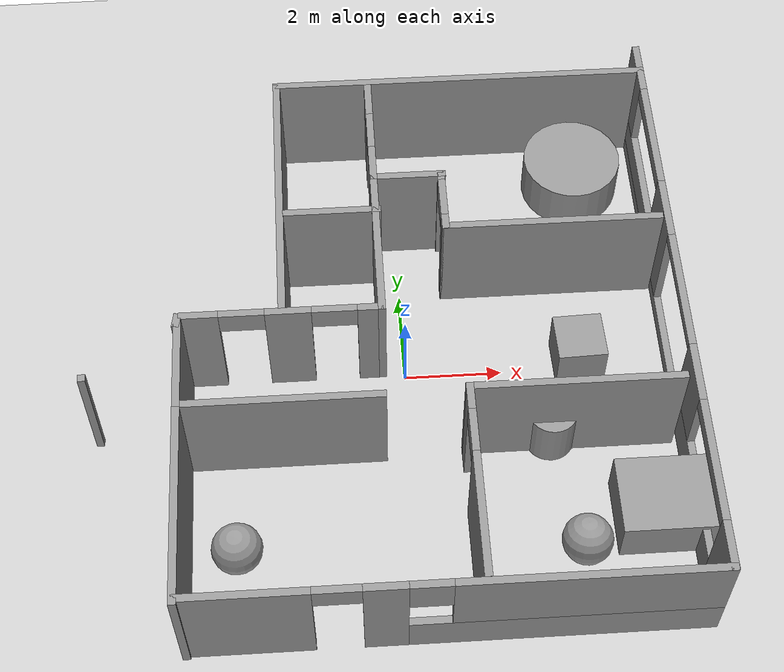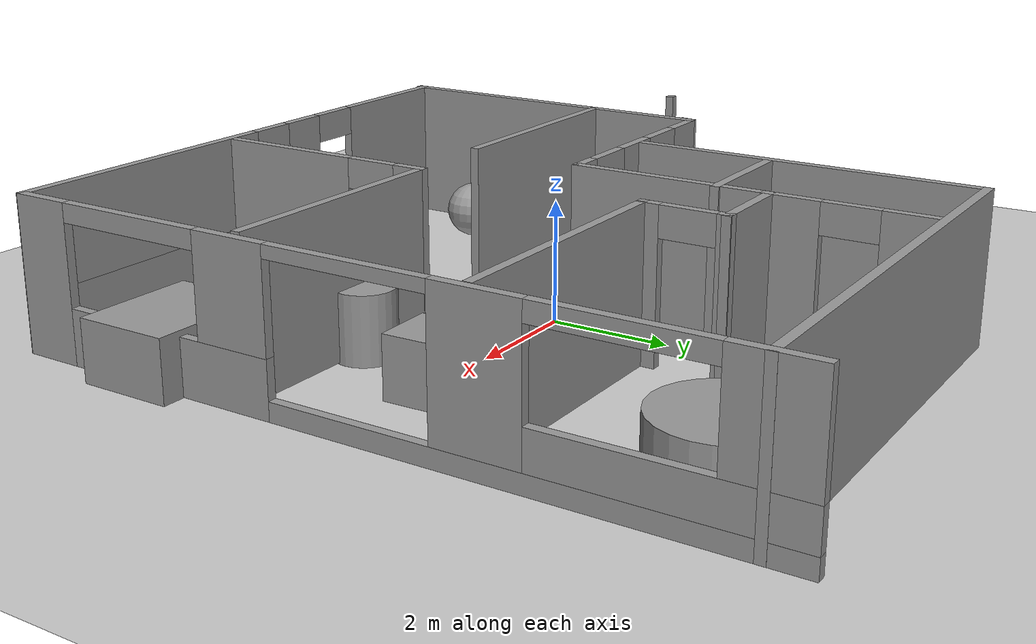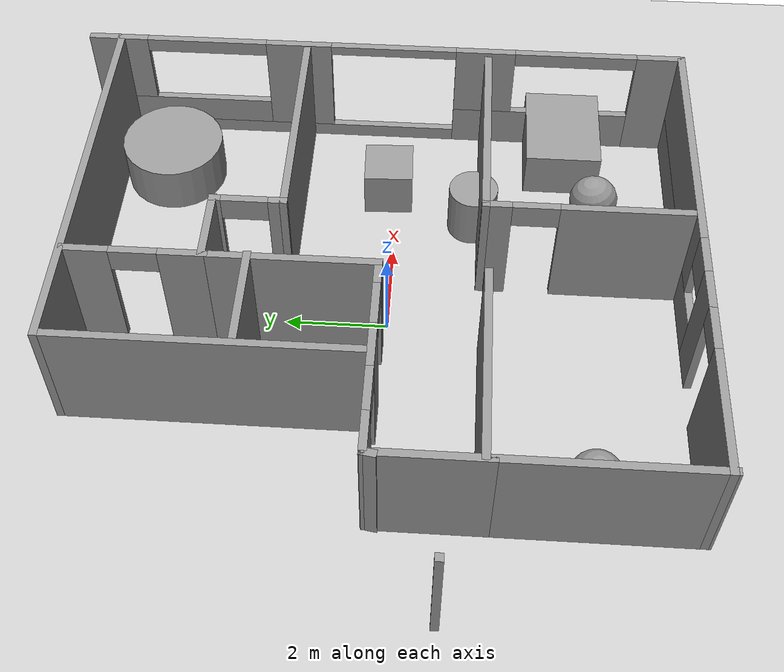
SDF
<sdf version="1.6">
 <world name="default">
  <light name="sun" type="directional">
   <pose>0 0 10 0 -0 0</pose>
   <diffuse>0.8 0.8 0.8 1</diffuse>
   <specular>0.2 0.2 0.2 1</specular>
   <attenuation>
    <range>1000</range>
    <constant>0.9</constant>
    <linear>0.01</linear>
    <quadratic>0.001</quadratic>
   </attenuation>
   <direction>-0.5 0.1 -0.9</direction>
  </light>
  <model name="ground_plane">
   <static>1</static>
   <link name="link">
    <collision name="collision">
     <geometry><plane><normal>0 0 1</normal><size>100 100</size></plane></geometry>
     <surface><friction><ode><mu>100</mu><mu2>50</mu2></ode></friction></surface>
    </collision>
    <visual name="visual">
     <cast_shadows>0</cast_shadows>
     <geometry><plane><normal>0 0 1</normal><size>100 100</size></plane></geometry>
     <material>
      <script><uri>file://media/materials/scripts/gazebo.material</uri><name>Gazebo/Grey</name></script>
     </material>
    </visual>
   </link>
  </model>
  <gravity>0 0 -9.8</gravity>
  <magnetic_field>6e-06 2.3e-05 -4.2e-05</magnetic_field>
  <atmosphere type="adiabatic"/>
  <physics name="default_physics" default="0" type="ode">
   <max_step_size>0.001</max_step_size>
   <real_time_factor>1</real_time_factor>
   <real_time_update_rate>1000</real_time_update_rate>
  </physics>
  <scene><ambient>0.4 0.4 0.4 1</ambient><background>0.7 0.7 0.7 1</background><shadows>1</shadows></scene>
  <spherical_coordinates>
   <surface_model>EARTH_WGS84</surface_model>
   <latitude_deg>0</latitude_deg>
   <longitude_deg>0</longitude_deg>
   <elevation>0</elevation>
   <heading_deg>0</heading_deg>
  </spherical_coordinates>
  <model name="appartment">
   <pose>-0.38282 0.370265 0.019563 -0.000691 0.002387 -0.003845</pose>
   <link name="Wall_101">
    <collision name="Wall_101_Collision">
     <geometry><box><size>2 0.15 2.5</size></box></geometry>
     <pose>0 0 1.25 0 -0 0</pose>
    </collision>
    <visual name="Wall_101_Visual">
     <pose>0 0 1.25 0 -0 0</pose>
     <geometry><box><size>2 0.15 2.5</size></box></geometry>
     <material>
      <script><uri>file://media/materials/scripts/gazebo.material</uri><name>Gazebo/Grey</name></script>
      <ambient>1 1 1 1</ambient>
     </material>
     <meta><layer>0</layer></meta>
    </visual>
    <pose>-0.959711 2.15887 0 0 -0 0</pose>
   </link>
   <link name="Wall_103">
    <collision name="Wall_103_Collision">
     <geometry><box><size>2.25 0.15 2.5</size></box></geometry>
     <pose>0 0 1.25 0 -0 0</pose>
    </collision>
    <visual name="Wall_103_Visual">
     <pose>0 0 1.25 0 -0 0</pose>
     <geometry><box><size>2.25 0.15 2.5</size></box></geometry>
     <material>
      <script><uri>file://media/materials/scripts/gazebo.material</uri><name>Gazebo/Grey</name></script>
      <ambient>1 1 1 1</ambient>
     </material>
     <meta><layer>0</layer></meta>
    </visual>
    <pose>-4.05534 -1.30677 0 0 -0 1.5708</pose>
   </link>
   <link name="Wall_104">
    <collision name="Wall_104_Collision">
     <geometry><box><size>0.305575 0.15 2.5</size></box></geometry>
     <pose>0 0 1.25 0 -0 0</pose>
    </collision>
    <visual name="Wall_104_Visual">
     <pose>0 0 1.25 0 -0 0</pose>
     <geometry><box><size>0.305575 0.15 2.5</size></box></geometry>
     <material>
      <script><uri>file://media/materials/scripts/gazebo.material</uri><name>Gazebo/Grey</name></script>
      <ambient>1 1 1 1</ambient>
     </material>
     <meta><layer>0</layer></meta>
    </visual>
    <pose>-4.06828 -0.333478 0 0 0 -1.73794</pose>
   </link>
   <link name="Wall_55">
    <collision name="Wall_55_Collision">
     <geometry><box><size>0.15 0.15 2.5</size></box></geometry>
     <pose>0 0 1.25 0 -0 0</pose>
    </collision>
    <visual name="Wall_55_Visual">
     <pose>0 0 1.25 0 -0 0</pose>
     <geometry><box><size>0.15 0.15 2.5</size></box></geometry>
     <material>
      <script><uri>file://media/materials/scripts/gazebo.material</uri><name>Gazebo/Grey</name></script>
      <ambient>1 1 1 1</ambient>
     </material>
     <meta><layer>0</layer></meta>
    </visual>
    <pose>-5.84363 -1.5444 0 0 -0 0</pose>
   </link>
   <link name="Wall_61">
    <pose>1.4899 -4.08314 0 0 0 -1.5708</pose>
    <visual name="Wall_61_Visual_0">
     <pose>-1.71394 0 1.25 0 -0 0</pose>
     <geometry><box><size>0.572121 0.15 2.5</size></box></geometry>
     <material>
      <script><uri>file://media/materials/scripts/gazebo.material</uri><name>Gazebo/Grey</name></script>
      <ambient>1 1 1 1</ambient>
     </material>
     <meta><layer>0</layer></meta>
    </visual>
    <collision name="Wall_61_Collision_0">
     <geometry><box><size>0.572121 0.15 2.5</size></box></geometry>
     <pose>-1.71394 0 1.25 0 -0 0</pose>
    </collision>
    <visual name="Wall_61_Visual_1">
     <pose>0.736061 0 1.25 0 -0 0</pose>
     <geometry><box><size>2.52788 0.15 2.5</size></box></geometry>
     <material>
      <script><uri>file://media/materials/scripts/gazebo.material</uri><name>Gazebo/Grey</name></script>
      <ambient>1 1 1 1</ambient>
     </material>
     <meta><layer>0</layer></meta>
    </visual>
    <collision name="Wall_61_Collision_1">
     <geometry><box><size>2.52788 0.15 2.5</size></box></geometry>
     <pose>0.736061 0 1.25 0 -0 0</pose>
    </collision>
    <visual name="Wall_61_Visual_2">
     <pose>-0.977879 0 2.25 0 -0 0</pose>
     <geometry><box><size>0.9 0.15 0.5</size></box></geometry>
     <material>
      <script><uri>file://media/materials/scripts/gazebo.material</uri><name>Gazebo/Grey</name></script>
      <ambient>1 1 1 1</ambient>
     </material>
     <meta><layer>0</layer></meta>
    </visual>
    <collision name="Wall_61_Collision_2">
     <geometry><box><size>0.9 0.15 0.5</size></box></geometry>
     <pose>-0.977879 0 2.25 0 -0 0</pose>
    </collision>
   </link>
   <link name="Wall_63">
    <pose>5.84227 0.031774 0 0 -0 1.5708</pose>
    <visual name="Wall_63_Visual_0">
     <pose>-5.76203 0 1.25 0 -0 0</pose>
     <geometry><box><size>0.975943 0.15 2.5</size></box></geometry>
     <material>
      <script><uri>file://media/materials/scripts/gazebo.material</uri><name>Gazebo/Grey</name></script>
      <ambient>1 1 1 1</ambient>
     </material>
     <meta><layer>0</layer></meta>
    </visual>
    <collision name="Wall_63_Collision_0">
     <geometry><box><size>0.975943 0.15 2.5</size></box></geometry>
     <pose>-5.76203 0 1.25 0 -0 0</pose>
    </collision>
    <visual name="Wall_63_Visual_1">
     <pose>-3.39353 0 0.45 0 -0 0</pose>
     <geometry><box><size>3.76105 0.15 0.9</size></box></geometry>
     <material>
      <script><uri>file://media/materials/scripts/gazebo.material</uri><name>Gazebo/Grey</name></script>
      <ambient>1 1 1 1</ambient>
     </material>
     <meta><layer>0</layer></meta>
    </visual>
    <collision name="Wall_63_Collision_1">
     <geometry><box><size>3.76105 0.15 0.9</size></box></geometry>
     <pose>-3.39353 0 0.45 0 -0 0</pose>
    </collision>
    <visual name="Wall_63_Visual_2">
     <pose>2.3685 0 0.15 0 -0 0</pose>
     <geometry><box><size>7.763 0.15 0.3</size></box></geometry>
     <material>
      <script><uri>file://media/materials/scripts/gazebo.material</uri><name>Gazebo/Grey</name></script>
      <ambient>1 1 1 1</ambient>
     </material>
     <meta><layer>0</layer></meta>
    </visual>
    <collision name="Wall_63_Collision_2">
     <geometry><box><size>7.763 0.15 0.3</size></box></geometry>
     <pose>2.3685 0 0.15 0 -0 0</pose>
    </collision>
    <visual name="Wall_63_Visual_3">
     <pose>1.80513 0 1.4 0 -0 0</pose>
     <geometry><box><size>1.38062 0.15 2.2</size></box></geometry>
     <material>
      <script><uri>file://media/materials/scripts/gazebo.material</uri><name>Gazebo/Grey</name></script>
      <ambient>1 1 1 1</ambient>
     </material>
     <meta><layer>0</layer></meta>
    </visual>
    <collision name="Wall_63_Collision_3">
     <geometry><box><size>1.38062 0.15 2.2</size></box></geometry>
     <pose>1.80513 0 1.4 0 -0 0</pose>
    </collision>
    <visual name="Wall_63_Visual_4">
     <pose>4.37272 0 0.6 0 -0 0</pose>
     <geometry><box><size>3.75456 0.15 0.6</size></box></geometry>
     <material>
      <script><uri>file://media/materials/scripts/gazebo.material</uri><name>Gazebo/Grey</name></script>
      <ambient>1 1 1 1</ambient>
     </material>
     <meta><layer>0</layer></meta>
    </visual>
    <collision name="Wall_63_Collision_4">
     <geometry><box><size>3.75456 0.15 0.6</size></box></geometry>
     <pose>4.37272 0 0.6 0 -0 0</pose>
    </collision>
    <visual name="Wall_63_Visual_5">
     <pose>-2.13353 0 1.7 0 -0 0</pose>
     <geometry><box><size>1.24105 0.15 1.6</size></box></geometry>
     <material>
      <script><uri>file://media/materials/scripts/gazebo.material</uri><name>Gazebo/Grey</name></script>
      <ambient>1 1 1 1</ambient>
     </material>
     <meta><layer>0</layer></meta>
    </visual>
    <collision name="Wall_63_Collision_5">
     <geometry><box><size>1.24105 0.15 1.6</size></box></geometry>
     <pose>-2.13353 0 1.7 0 -0 0</pose>
    </collision>
    <visual name="Wall_63_Visual_6">
     <pose>-2.13353 0 1.7 0 -0 0</pose>
     <geometry><box><size>1.24105 0.15 1.6</size></box></geometry>
     <material>
      <script><uri>file://media/materials/scripts/gazebo.material</uri><name>Gazebo/Grey</name></script>
      <ambient>1 1 1 1</ambient>
     </material>
     <meta><layer>0</layer></meta>
    </visual>
    <collision name="Wall_63_Collision_6">
     <geometry><box><size>1.24105 0.15 1.6</size></box></geometry>
     <pose>-2.13353 0 1.7 0 -0 0</pose>
    </collision>
    <visual name="Wall_63_Visual_7">
     <pose>5.63272 0 1.7 0 -0 0</pose>
     <geometry><box><size>1.23456 0.15 1.6</size></box></geometry>
     <material>
      <script><uri>file://media/materials/scripts/gazebo.material</uri><name>Gazebo/Grey</name></script>
      <ambient>1 1 1 1</ambient>
     </material>
     <meta><layer>0</layer></meta>
    </visual>
    <collision name="Wall_63_Collision_7">
     <geometry><box><size>1.23456 0.15 1.6</size></box></geometry>
     <pose>5.63272 0 1.7 0 -0 0</pose>
    </collision>
    <visual name="Wall_63_Visual_8">
     <pose>-4.01406 0 2.35 0 -0 0</pose>
     <geometry><box><size>2.52 0.15 0.3</size></box></geometry>
     <material>
      <script><uri>file://media/materials/scripts/gazebo.material</uri><name>Gazebo/Grey</name></script>
      <ambient>1 1 1 1</ambient>
     </material>
     <meta><layer>0</layer></meta>
    </visual>
    <collision name="Wall_63_Collision_8">
     <geometry><box><size>2.52 0.15 0.3</size></box></geometry>
     <pose>-4.01406 0 2.35 0 -0 0</pose>
    </collision>
    <visual name="Wall_63_Visual_9">
     <pose>3.75544 0 2.35 0 -0 0</pose>
     <geometry><box><size>2.52 0.15 0.3</size></box></geometry>
     <material>
      <script><uri>file://media/materials/scripts/gazebo.material</uri><name>Gazebo/Grey</name></script>
      <ambient>1 1 1 1</ambient>
     </material>
     <meta><layer>0</layer></meta>
    </visual>
    <collision name="Wall_63_Collision_9">
     <geometry><box><size>2.52 0.15 0.3</size></box></geometry>
     <pose>3.75544 0 2.35 0 -0 0</pose>
    </collision>
    <visual name="Wall_63_Visual_10">
     <pose>-0.199096 0 2.4 0 -0 0</pose>
     <geometry><box><size>2.62782 0.15 0.2</size></box></geometry>
     <material>
      <script><uri>file://media/materials/scripts/gazebo.material</uri><name>Gazebo/Grey</name></script>
      <ambient>1 1 1 1</ambient>
     </material>
     <meta><layer>0</layer></meta>
    </visual>
    <collision name="Wall_63_Collision_10">
     <geometry><box><size>2.62782 0.15 0.2</size></box></geometry>
     <pose>-0.199096 0 2.4 0 -0 0</pose>
    </collision>
    <visual name="Wall_63_Visual_11">
     <pose>-0.199096 0 2.4 0 -0 0</pose>
     <geometry><box><size>2.62782 0.15 0.2</size></box></geometry>
     <material>
      <script><uri>file://media/materials/scripts/gazebo.material</uri><name>Gazebo/Grey</name></script>
      <ambient>1 1 1 1</ambient>
     </material>
     <meta><layer>0</layer></meta>
    </visual>
    <collision name="Wall_63_Collision_11">
     <geometry><box><size>2.62782 0.15 0.2</size></box></geometry>
     <pose>-0.199096 0 2.4 0 -0 0</pose>
    </collision>
   </link>
   <link name="Wall_66">
    <collision name="Wall_66_Collision">
     <geometry><box><size>4.25 0.15 2.5</size></box></geometry>
     <pose>0 0 1.25 0 -0 0</pose>
    </collision>
    <visual name="Wall_66_Visual">
     <pose>0 0 1.25 0 -0 0</pose>
     <geometry><box><size>4.25 0.15 2.5</size></box></geometry>
     <material>
      <script><uri>file://media/materials/scripts/gazebo.material</uri><name>Gazebo/Grey</name></script>
      <ambient>1 1 1 1</ambient>
     </material>
     <meta><layer>0</layer></meta>
    </visual>
    <pose>3.5399 -2.15814 0 0 -0 0</pose>
   </link>
   <link name="Wall_70">
    <collision name="Wall_70_Collision">
     <geometry><box><size>4 0.15 2.5</size></box></geometry>
     <pose>0 0 1.25 0 -0 0</pose>
    </collision>
    <visual name="Wall_70_Visual">
     <pose>0 0 1.25 0 -0 0</pose>
     <geometry><box><size>4 0.15 2.5</size></box></geometry>
     <material>
      <script><uri>file://media/materials/scripts/gazebo.material</uri><name>Gazebo/Grey</name></script>
      <ambient>1 1 1 1</ambient>
     </material>
     <meta><layer>0</layer></meta>
    </visual>
    <pose>-2.08943 -2.22934 0 0 -0 0</pose>
   </link>
   <link name="Wall_72">
    <collision name="Wall_72_Collision">
     <geometry><box><size>4 0.15 2.5</size></box></geometry>
     <pose>0 0 1.25 0 -0 0</pose>
    </collision>
    <visual name="Wall_72_Visual">
     <pose>0 0 1.25 0 -0 0</pose>
     <geometry><box><size>4 0.15 2.5</size></box></geometry>
     <material>
      <script><uri>file://media/materials/scripts/gazebo.material</uri><name>Gazebo/Grey</name></script>
      <ambient>1 1 1 1</ambient>
     </material>
     <meta><layer>0</layer></meta>
    </visual>
    <pose>-4.05534 -4.28177 0 0 0 -1.5708</pose>
   </link>
   <link name="Wall_74">
    <pose>0.890118 -6.16025 0 0 -0 0</pose>
    <visual name="Wall_74_Visual_0">
     <pose>-3.77374 0 1.25 0 -0 0</pose>
     <geometry><box><size>2.49354 0.15 2.5</size></box></geometry>
     <material>
      <script><uri>file://media/materials/scripts/gazebo.material</uri><name>Gazebo/Grey</name></script>
      <ambient>1 1 1 1</ambient>
     </material>
     <meta><layer>0</layer></meta>
    </visual>
    <collision name="Wall_74_Collision_0">
     <geometry><box><size>2.49354 0.15 2.5</size></box></geometry>
     <pose>-3.77374 0 1.25 0 -0 0</pose>
    </collision>
    <visual name="Wall_74_Visual_1">
     <pose>-1.21454 0 1.25 0 -0 0</pose>
     <geometry><box><size>0.824861 0.15 2.5</size></box></geometry>
     <material>
      <script><uri>file://media/materials/scripts/gazebo.material</uri><name>Gazebo/Grey</name></script>
      <ambient>1 1 1 1</ambient>
     </material>
     <meta><layer>0</layer></meta>
    </visual>
    <collision name="Wall_74_Collision_1">
     <geometry><box><size>0.824861 0.15 2.5</size></box></geometry>
     <pose>-1.21454 0 1.25 0 -0 0</pose>
    </collision>
    <visual name="Wall_74_Visual_2">
     <pose>2.1092 0 0.45 0 -0 0</pose>
     <geometry><box><size>5.82262 0.15 0.9</size></box></geometry>
     <material>
      <script><uri>file://media/materials/scripts/gazebo.material</uri><name>Gazebo/Grey</name></script>
      <ambient>1 1 1 1</ambient>
     </material>
     <meta><layer>0</layer></meta>
    </visual>
    <collision name="Wall_74_Collision_2">
     <geometry><box><size>5.82262 0.15 0.9</size></box></geometry>
     <pose>2.1092 0 0.45 0 -0 0</pose>
    </collision>
    <visual name="Wall_74_Visual_3">
     <pose>2.5092 0 1.7 0 -0 0</pose>
     <geometry><box><size>5.02262 0.15 1.6</size></box></geometry>
     <material>
      <script><uri>file://media/materials/scripts/gazebo.material</uri><name>Gazebo/Grey</name></script>
      <ambient>1 1 1 1</ambient>
     </material>
     <meta><layer>0</layer></meta>
    </visual>
    <collision name="Wall_74_Collision_3">
     <geometry><box><size>5.02262 0.15 1.6</size></box></geometry>
     <pose>2.5092 0 1.7 0 -0 0</pose>
    </collision>
    <visual name="Wall_74_Visual_4">
     <pose>-0.40211 0 2.1 0 -0 0</pose>
     <geometry><box><size>0.8 0.15 0.8</size></box></geometry>
     <material>
      <script><uri>file://media/materials/scripts/gazebo.material</uri><name>Gazebo/Grey</name></script>
      <ambient>1 1 1 1</ambient>
     </material>
     <meta><layer>0</layer></meta>
    </visual>
    <collision name="Wall_74_Collision_4">
     <geometry><box><size>0.8 0.15 0.8</size></box></geometry>
     <pose>-0.40211 0 2.1 0 -0 0</pose>
    </collision>
    <visual name="Wall_74_Visual_5">
     <pose>-2.07697 0 2.25 0 -0 0</pose>
     <geometry><box><size>0.9 0.15 0.5</size></box></geometry>
     <material>
      <script><uri>file://media/materials/scripts/gazebo.material</uri><name>Gazebo/Grey</name></script>
      <ambient>1 1 1 1</ambient>
     </material>
     <meta><layer>0</layer></meta>
    </visual>
    <collision name="Wall_74_Collision_5">
     <geometry><box><size>0.9 0.15 0.5</size></box></geometry>
     <pose>-2.07697 0 2.25 0 -0 0</pose>
    </collision>
   </link>
   <link name="Wall_76">
    <pose>-2.04291 -0.240947 0 0 -0 0</pose>
    <visual name="Wall_76_Visual_0">
     <pose>-1.61114 0 1.25 0 -0 0</pose>
     <geometry><box><size>0.777715 0.15 2.5</size></box></geometry>
     <material>
      <script><uri>file://media/materials/scripts/gazebo.material</uri><name>Gazebo/Grey</name></script>
      <ambient>1 1 1 1</ambient>
     </material>
     <meta><layer>0</layer></meta>
    </visual>
    <collision name="Wall_76_Collision_0">
     <geometry><box><size>0.777715 0.15 2.5</size></box></geometry>
     <pose>-1.61114 0 1.25 0 -0 0</pose>
    </collision>
    <visual name="Wall_76_Visual_1">
     <pose>0.134932 0 1.25 0 -0 0</pose>
     <geometry><box><size>0.914432 0.15 2.5</size></box></geometry>
     <material>
      <script><uri>file://media/materials/scripts/gazebo.material</uri><name>Gazebo/Grey</name></script>
      <ambient>1 1 1 1</ambient>
     </material>
     <meta><layer>0</layer></meta>
    </visual>
    <collision name="Wall_76_Collision_1">
     <geometry><box><size>0.914432 0.15 2.5</size></box></geometry>
     <pose>0.134932 0 1.25 0 -0 0</pose>
    </collision>
    <visual name="Wall_76_Visual_2">
     <pose>1.74607 0 1.25 0 -0 0</pose>
     <geometry><box><size>0.507852 0.15 2.5</size></box></geometry>
     <material>
      <script><uri>file://media/materials/scripts/gazebo.material</uri><name>Gazebo/Grey</name></script>
      <ambient>1 1 1 1</ambient>
     </material>
     <meta><layer>0</layer></meta>
    </visual>
    <collision name="Wall_76_Collision_2">
     <geometry><box><size>0.507852 0.15 2.5</size></box></geometry>
     <pose>1.74607 0 1.25 0 -0 0</pose>
    </collision>
    <visual name="Wall_76_Visual_3">
     <pose>-0.772285 0 2.25 0 -0 0</pose>
     <geometry><box><size>0.9 0.15 0.5</size></box></geometry>
     <material>
      <script><uri>file://media/materials/scripts/gazebo.material</uri><name>Gazebo/Grey</name></script>
      <ambient>1 1 1 1</ambient>
     </material>
     <meta><layer>0</layer></meta>
    </visual>
    <collision name="Wall_76_Collision_3">
     <geometry><box><size>0.9 0.15 0.5</size></box></geometry>
     <pose>-0.772285 0 2.25 0 -0 0</pose>
    </collision>
    <visual name="Wall_76_Visual_4">
     <pose>1.04215 0 2.25 0 -0 0</pose>
     <geometry><box><size>0.9 0.15 0.5</size></box></geometry>
     <material>
      <script><uri>file://media/materials/scripts/gazebo.material</uri><name>Gazebo/Grey</name></script>
      <ambient>1 1 1 1</ambient>
     </material>
     <meta><layer>0</layer></meta>
    </visual>
    <collision name="Wall_76_Collision_4">
     <geometry><box><size>0.9 0.15 0.5</size></box></geometry>
     <pose>1.04215 0 2.25 0 -0 0</pose>
    </collision>
   </link>
   <link name="Wall_80">
    <collision name="Wall_80_Collision">
     <geometry><box><size>3.25 0.15 2.5</size></box></geometry>
     <pose>0 0 1.25 0 -0 0</pose>
    </collision>
    <visual name="Wall_80_Visual">
     <pose>0 0 1.25 0 -0 0</pose>
     <geometry><box><size>3.25 0.15 2.5</size></box></geometry>
     <material>
      <script><uri>file://media/materials/scripts/gazebo.material</uri><name>Gazebo/Grey</name></script>
      <ambient>1 1 1 1</ambient>
     </material>
     <meta><layer>0</layer></meta>
    </visual>
    <pose>-0.071381 1.30905 0 0 -0 1.5708</pose>
   </link>
   <link name="Wall_82">
    <collision name="Wall_82_Collision">
     <geometry><box><size>8.01791 0.15 2.5</size></box></geometry>
     <pose>0 0 1.25 0 -0 0</pose>
    </collision>
    <visual name="Wall_82_Visual">
     <pose>0 0 1.25 0 -0 0</pose>
     <geometry><box><size>8.01791 0.15 2.5</size></box></geometry>
     <material>
      <script><uri>file://media/materials/scripts/gazebo.material</uri><name>Gazebo/Grey</name></script>
      <ambient>1 1 1 1</ambient>
     </material>
     <meta><layer>0</layer></meta>
    </visual>
    <pose>1.90967 5.60164 0 0 -0 0</pose>
   </link>
   <link name="Wall_84">
    <collision name="Wall_84_Collision">
     <geometry><box><size>5.80214 0.15 2.5</size></box></geometry>
     <pose>0 0 1.25 0 -0 0</pose>
    </collision>
    <visual name="Wall_84_Visual">
     <pose>0 0 1.25 0 -0 0</pose>
     <geometry><box><size>5.80214 0.15 2.5</size></box></geometry>
     <material>
      <script><uri>file://media/materials/scripts/gazebo.material</uri><name>Gazebo/Grey</name></script>
      <ambient>1 1 1 1</ambient>
     </material>
     <meta><layer>0</layer></meta>
    </visual>
    <pose>-2.02428 2.72905 0 0 0 -1.5708</pose>
   </link>
   <link name="Wall_86">
    <pose>-0.070278 4.2495 0 0 0 -1.5708</pose>
    <visual name="Wall_86_Visual_0">
     <pose>-0.913974 0 1.25 0 -0 0</pose>
     <geometry><box><size>0.922052 0.15 2.5</size></box></geometry>
     <material>
      <script><uri>file://media/materials/scripts/gazebo.material</uri><name>Gazebo/Grey</name></script>
      <ambient>1 1 1 1</ambient>
     </material>
     <meta><layer>0</layer></meta>
    </visual>
    <collision name="Wall_86_Collision_0">
     <geometry><box><size>0.922052 0.15 2.5</size></box></geometry>
     <pose>-0.913974 0 1.25 0 -0 0</pose>
    </collision>
    <visual name="Wall_86_Visual_1">
     <pose>0.911026 0 1.25 0 -0 0</pose>
     <geometry><box><size>0.927948 0.15 2.5</size></box></geometry>
     <material>
      <script><uri>file://media/materials/scripts/gazebo.material</uri><name>Gazebo/Grey</name></script>
      <ambient>1 1 1 1</ambient>
     </material>
     <meta><layer>0</layer></meta>
    </visual>
    <collision name="Wall_86_Collision_1">
     <geometry><box><size>0.927948 0.15 2.5</size></box></geometry>
     <pose>0.911026 0 1.25 0 -0 0</pose>
    </collision>
    <visual name="Wall_86_Visual_2">
     <pose>-0.002948 0 2.25 0 -0 0</pose>
     <geometry><box><size>0.9 0.15 0.5</size></box></geometry>
     <material>
      <script><uri>file://media/materials/scripts/gazebo.material</uri><name>Gazebo/Grey</name></script>
      <ambient>1 1 1 1</ambient>
     </material>
     <meta><layer>0</layer></meta>
    </visual>
    <collision name="Wall_86_Collision_2">
     <geometry><box><size>0.9 0.15 0.5</size></box></geometry>
     <pose>-0.002948 0 2.25 0 -0 0</pose>
    </collision>
   </link>
   <link name="Wall_91">
    <collision name="Wall_91_Collision">
     <geometry><box><size>4.5 0.15 2.5</size></box></geometry>
     <pose>0 0 1.25 0 -0 0</pose>
    </collision>
    <visual name="Wall_91_Visual">
     <pose>0 0 1.25 0 -0 0</pose>
     <geometry><box><size>4.5 0.15 2.5</size></box></geometry>
     <material>
      <script><uri>file://media/materials/scripts/gazebo.material</uri><name>Gazebo/Grey</name></script>
      <ambient>1 1 1 1</ambient>
     </material>
     <meta><layer>0</layer></meta>
    </visual>
    <pose>3.50044 1.64711 0 0 -0 0</pose>
   </link>
   <link name="Wall_95">
    <collision name="Wall_95_Collision">
     <geometry><box><size>1.5 0.15 2.5</size></box></geometry>
     <pose>0 0 1.25 0 -0 0</pose>
    </collision>
    <visual name="Wall_95_Visual">
     <pose>0 0 1.25 0 -0 0</pose>
     <geometry><box><size>1.5 0.15 2.5</size></box></geometry>
     <material>
      <script><uri>file://media/materials/scripts/gazebo.material</uri><name>Gazebo/Grey</name></script>
      <ambient>1 1 1 1</ambient>
     </material>
     <meta><layer>0</layer></meta>
    </visual>
    <pose>0.615956 2.9963 0 0 -0 0</pose>
   </link>
   <link name="Wall_96">
    <collision name="Wall_96_Collision">
     <geometry><box><size>0.16 0.15 2.5</size></box></geometry>
     <pose>0 0 1.25 0 -0 0</pose>
    </collision>
    <visual name="Wall_96_Visual">
     <pose>0 0 1.25 0 -0 0</pose>
     <geometry><box><size>0.16 0.15 2.5</size></box></geometry>
     <material>
      <script><uri>file://media/materials/scripts/gazebo.material</uri><name>Gazebo/Grey</name></script>
      <ambient>1 1 1 1</ambient>
     </material>
     <meta><layer>0</layer></meta>
    </visual>
    <pose>1.34248 2.9963 0 0 -0 0</pose>
   </link>
   <link name="Wall_99">
    <pose>1.32544 2.32211 0 0 -0 1.5708</pose>
    <visual name="Wall_99_Visual_0">
     <pose>-0.565309 0 1.25 0 -0 0</pose>
     <geometry><box><size>0.369382 0.15 2.5</size></box></geometry>
     <material>
      <script><uri>file://media/materials/scripts/gazebo.material</uri><name>Gazebo/Grey</name></script>
      <ambient>1 1 1 1</ambient>
     </material>
     <meta><layer>0</layer></meta>
    </visual>
    <collision name="Wall_99_Collision_0">
     <geometry><box><size>0.369382 0.15 2.5</size></box></geometry>
     <pose>-0.565309 0 1.25 0 -0 0</pose>
    </collision>
    <visual name="Wall_99_Visual_1">
     <pose>0.634691 0 1.25 0 -0 0</pose>
     <geometry><box><size>0.230618 0.15 2.5</size></box></geometry>
     <material>
      <script><uri>file://media/materials/scripts/gazebo.material</uri><name>Gazebo/Grey</name></script>
      <ambient>1 1 1 1</ambient>
     </material>
     <meta><layer>0</layer></meta>
    </visual>
    <collision name="Wall_99_Collision_1">
     <geometry><box><size>0.230618 0.15 2.5</size></box></geometry>
     <pose>0.634691 0 1.25 0 -0 0</pose>
    </collision>
    <visual name="Wall_99_Visual_2">
     <pose>0.069382 0 2.25 0 -0 0</pose>
     <geometry><box><size>0.9 0.15 0.5</size></box></geometry>
     <material>
      <script><uri>file://media/materials/scripts/gazebo.material</uri><name>Gazebo/Grey</name></script>
      <ambient>1 1 1 1</ambient>
     </material>
     <meta><layer>0</layer></meta>
    </visual>
    <collision name="Wall_99_Collision_2">
     <geometry><box><size>0.9 0.15 0.5</size></box></geometry>
     <pose>0.069382 0 2.25 0 -0 0</pose>
    </collision>
   </link>
   <static>1</static>
  </model>
  <model name="unit_box">
   <pose>3.58786 0.171508 0.499995 0 -1e-05 0.029306</pose>
   <link name="link">
    <inertial>
     <mass>1</mass>
     <inertia>
      <ixx>0.166667</ixx>
      <ixy>0</ixy>
      <ixz>0</ixz>
      <iyy>0.166667</iyy>
      <iyz>0</iyz>
      <izz>0.166667</izz>
     </inertia>
    </inertial>
    <collision name="collision"><geometry><box><size>1 1 1</size></box></geometry></collision>
    <visual name="visual">
     <geometry><box><size>1 1 1</size></box></geometry>
     <material>
      <script><name>Gazebo/Grey</name><uri>file://media/materials/scripts/gazebo.material</uri></script>
     </material>
    </visual>
   </link>
  </model>
  <model name="unit_cylinder">
   <pose>3.9838 4.81179 0.499991 0 -1e-06 -2.8e-05</pose>
   <link name="link">
    <inertial>
     <mass>1</mass>
     <inertia><ixx>0.145833</ixx><ixy>0</ixy><ixz>0</ixz><iyy>0.145833</iyy><iyz>0</iyz><izz>0.125</izz></inertia>
    </inertial>
    <collision name="collision">
     <geometry><cylinder><radius>1.04915</radius><length>1</length></cylinder></geometry>
    </collision>
    <visual name="visual">
     <geometry><cylinder><radius>1.04915</radius><length>1</length></cylinder></geometry>
     <material>
      <script><name>Gazebo/Grey</name><uri>file://media/materials/scripts/gazebo.material</uri></script>
     </material>
    </visual>
   </link>
  </model>
  <model name="unit_cylinder_0">
   <pose>2.81667 -1.61251 0.317913 0 -0 0.013477</pose>
   <link name="link">
    <inertial>
     <mass>1</mass>
     <inertia><ixx>0.145833</ixx><ixy>0</ixy><ixz>0</ixz><iyy>0.145833</iyy><iyz>0</iyz><izz>0.125</izz></inertia>
    </inertial>
    <collision name="collision">
     <geometry><cylinder><radius>0.5</radius><length>1.57276</length></cylinder></geometry>
    </collision>
    <visual name="visual">
     <geometry><cylinder><radius>0.5</radius><length>1.57276</length></cylinder></geometry>
     <material>
      <script><name>Gazebo/Grey</name><uri>file://media/materials/scripts/gazebo.material</uri></script>
     </material>
    </visual>
   </link>
  </model>
  <model name="unit_sphere">
   <pose>3.23367 -4.14773 0.5 -0.186104 0.006672 -0.01017</pose>
   <link name="link">
    <inertial>
     <mass>1</mass>
     <inertia><ixx>0.1</ixx><ixy>0</ixy><ixz>0</ixz><iyy>0.1</iyy><iyz>0</iyz><izz>0.1</izz></inertia>
    </inertial>
    <collision name="collision"><geometry><sphere><radius>0.5</radius></sphere></geometry></collision>
    <visual name="visual">
     <geometry><sphere><radius>0.5</radius></sphere></geometry>
     <material>
      <script><name>Gazebo/Grey</name><uri>file://media/materials/scripts/gazebo.material</uri></script>
     </material>
    </visual>
   </link>
  </model>
  <model name="unit_sphere_0">
   <pose>-3.47668 -3.90723 0.5 -7.8e-05 -0.020283 1e-06</pose>
   <link name="link">
    <inertial>
     <mass>1</mass>
     <inertia><ixx>0.1</ixx><ixy>0</ixy><ixz>0</ixz><iyy>0.1</iyy><iyz>0</iyz><izz>0.1</izz></inertia>
    </inertial>
    <collision name="collision"><geometry><sphere><radius>0.5</radius></sphere></geometry></collision>
    <visual name="visual">
     <geometry><sphere><radius>0.5</radius></sphere></geometry>
     <material>
      <script><name>Gazebo/Grey</name><uri>file://media/materials/scripts/gazebo.material</uri></script>
     </material>
    </visual>
   </link>
  </model>
  <model name="unit_box_0">
   <pose>4.88309 -3.50262 0.499999 3e-06 -2e-06 -0.003844</pose>
   <link name="link">
    <inertial>
     <mass>1</mass>
     <inertia>
      <ixx>0.166667</ixx>
      <ixy>0</ixy>
      <ixz>0</ixz>
      <iyy>0.166667</iyy>
      <iyz>0</iyz>
      <izz>0.166667</izz>
     </inertia>
    </inertial>
    <collision name="collision"><geometry><box><size>2.02264 1.56576 1</size></box></geometry></collision>
    <visual name="visual">
     <geometry><box><size>2.02264 1.56576 1</size></box></geometry>
     <material>
      <script><name>Gazebo/Grey</name><uri>file://media/materials/scripts/gazebo.material</uri></script>
     </material>
    </visual>
   </link>
  </model>
 </world>
</sdf>
